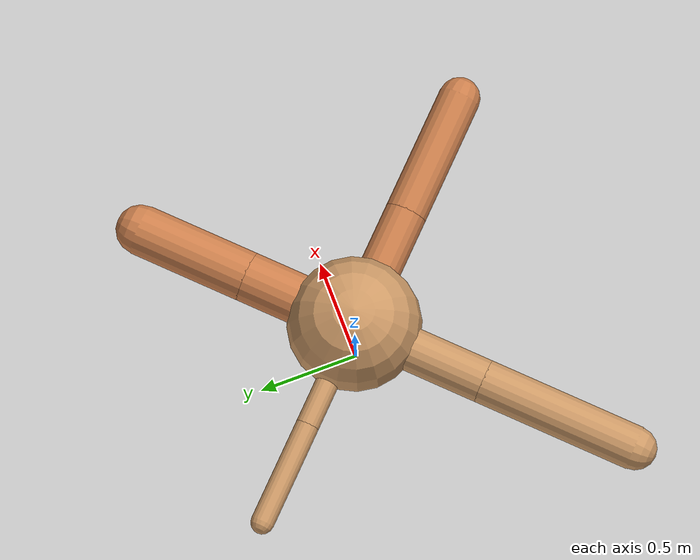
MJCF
<?xml version="1.0" ?>
<mujoco model="ant">

	<compiler angle="degree" coordinate="local" inertiafromgeom="true"/>

	<option integrator="RK4" timestep="0.01"/>

	<custom>

		<numeric data="0.0 0.0 0.55 1.0 0.0 0.0 0.0 0.0 1.0 0.0 -1.0 0.0 -1.0 0.0 1.0" name="init_qpos"/>

	</custom>

	<default>

		<joint armature="1" damping="1" limited="true"/>

		<geom conaffinity="0" condim="3" density="5.0" friction="1.5 0.1 0.1" margin="0.01" rgba="0.8 0.6 0.4 1"/>

	</default>

	<worldbody>

		<body name="torso" pos="0 0 0.75">

			<geom name="torso_geom" pos="0 0 0" size="0.32592783203346354" type="sphere"/>

			<!--joint armature="0" damping="0" limited="false" margin="0.01" name="root" pos="0 0 0" type="free"/-->

			<body name="front_left_leg" pos="0 0 0">

				<geom fromto="0 0 0 0.2 0.2 0" name="aux_1_geom" size="0.12302646118714432" type="capsule" rgba=".8 .5 .3 1"/>

				<body name="aux_1" pos="0.2 0.2 0">

					<joint axis="0 0 1" name="hip_1" pos="0.0 0.0 0.0" range="-40 40" type="hinge"/>

					<geom fromto="0 0 0 0.19900010930209325 0.19900010930209325 0" name="left_leg_geom" size="0.12302646118714432" type="capsule" rgba=".8 .5 .3 1"/>

					<body pos="0.19900010930209325 0.19900010930209325 0" name="front_left_foot">

						<joint axis="-1 1 0" name="ankle_1" pos="0.0 0.0 0.0" range="30 100" type="hinge"/>

						<geom fromto="0 0 0 0.3980002186041865 0.3980002186041865 0" name="left_ankle_geom" size="0.12302646118714432" type="capsule" rgba=".8 .5 .3 1"/>

					</body>

				</body>

			</body>

			<body name="front_right_leg" pos="0 0 0">

				<geom fromto="0 0 0 -0.2 0.2 0" name="aux_2_geom" size="0.056583387010551205" type="capsule"/>

				<body name="aux_2" pos="-0.2 0.2 0">

					<joint axis="0 0 1" name="hip_2" pos="0.0 0.0 0.0" range="-40 40" type="hinge"/>

					<geom fromto="0 0 0 -0.18160339504870326 0.18160339504870326 0" name="right_leg_geom" size="0.056583387010551205" type="capsule"/>

					<body pos="-0.18160339504870326 0.18160339504870326 0" name="front_right_foot">

						<joint axis="1 1 0" name="ankle_2" pos="0.0 0.0 0.0" range="-100 -30" type="hinge"/>

						<geom fromto="0 0 0 -0.36320679009740653 0.36320679009740653 0" name="right_ankle_geom" size="0.056583387010551205" type="capsule"/>

					</body>

				</body>

			</body>

			<body name="left_back_leg" pos="0 0 0">

				<geom fromto="0 0 0 -0.2 -0.2 0" name="aux_3_geom" size="0.10696210576642738" type="capsule"/>

				<body name="aux_3" pos="-0.2 -0.2 0">

					<joint axis="0 0 1" name="hip_3" pos="0.0 0.0 0.0" range="-40 40" type="hinge"/>

					<geom fromto="0 0 0 -0.2782264876517255 -0.2782264876517255 0" name="back_leg_geom" size="0.10696210576642738" type="capsule"/>

					<body pos="-0.2782264876517255 -0.2782264876517255 0" name="left_back_foot">

						<joint axis="-1 1 0" name="ankle_3" pos="0.0 0.0 0.0" range="-100 -30" type="hinge"/>

						<geom fromto="0 0 0 -0.556452975303451 -0.556452975303451 0" name="third_ankle_geom" size="0.10696210576642738" type="capsule"/>

					</body>

				</body>

			</body>

			<body name="right_back_leg" pos="0 0 0">

				<geom fromto="0 0 0 0.2 -0.2 0" name="aux_4_geom" size="0.10230705573953555" type="capsule" rgba=".8 .5 .3 1"/>

				<body name="aux_4" pos="0.2 -0.2 0">

					<joint axis="0 0 1" name="hip_4" pos="0.0 0.0 0.0" range="-40 40" type="hinge"/>

					<geom fromto="0 0 0 0.22362589168720068 -0.22362589168720068 0" name="rightback_leg_geom" size="0.10230705573953555" type="capsule" rgba=".8 .5 .3 1"/>

					<body pos="0.22362589168720068 -0.22362589168720068 0" name="right_back_foot">

						<joint axis="1 1 0" name="ankle_4" pos="0.0 0.0 0.0" range="30 100" type="hinge"/>

						<geom fromto="0 0 0 0.44725178337440136 -0.44725178337440136 0" name="fourth_ankle_geom" size="0.10230705573953555" type="capsule" rgba=".8 .5 .3 1"/>

					</body>

				</body>

			</body>

		</body>

	</worldbody>

	<actuator>

		<motor ctrllimited="true" ctrlrange="-1.0 1.0" joint="hip_4" gear="150"/>

		<motor ctrllimited="true" ctrlrange="-1.0 1.0" joint="ankle_4" gear="150"/>

		<motor ctrllimited="true" ctrlrange="-1.0 1.0" joint="hip_1" gear="150"/>

		<motor ctrllimited="true" ctrlrange="-1.0 1.0" joint="ankle_1" gear="150"/>

		<motor ctrllimited="true" ctrlrange="-1.0 1.0" joint="hip_2" gear="150"/>

		<motor ctrllimited="true" ctrlrange="-1.0 1.0" joint="ankle_2" gear="150"/>

		<motor ctrllimited="true" ctrlrange="-1.0 1.0" joint="hip_3" gear="150"/>

		<motor ctrllimited="true" ctrlrange="-1.0 1.0" joint="ankle_3" gear="150"/>

	</actuator>

</mujoco>
